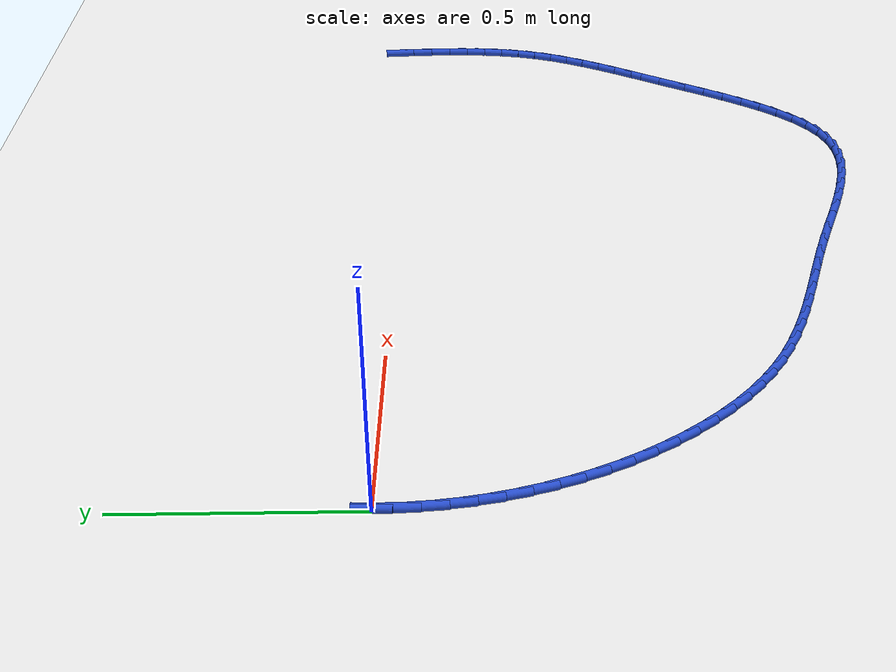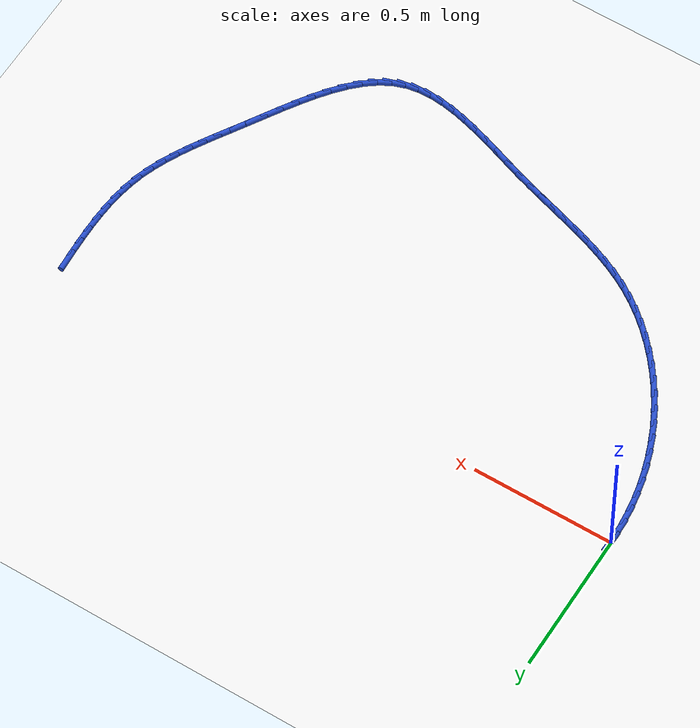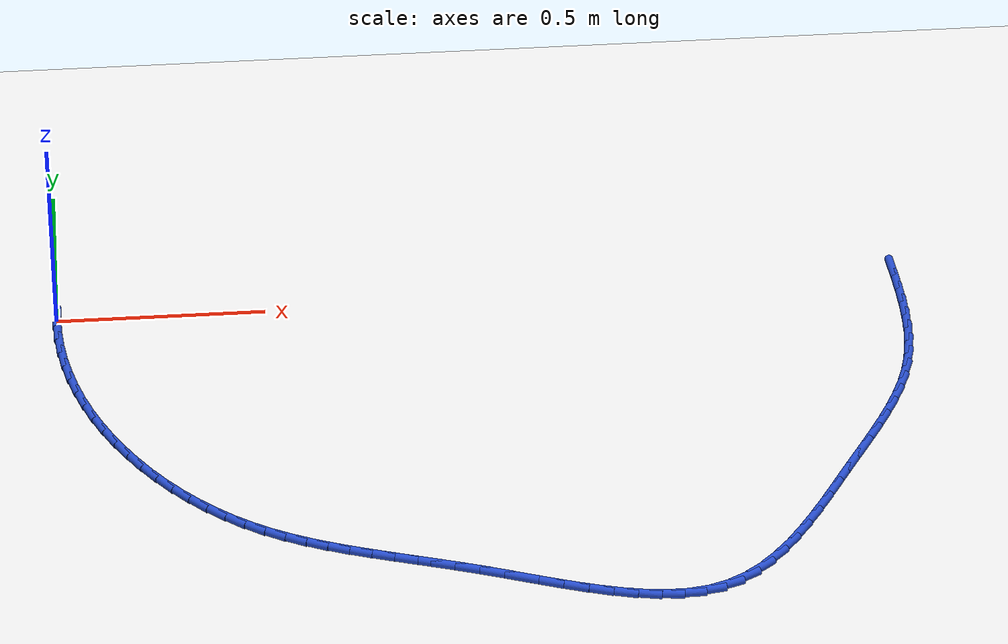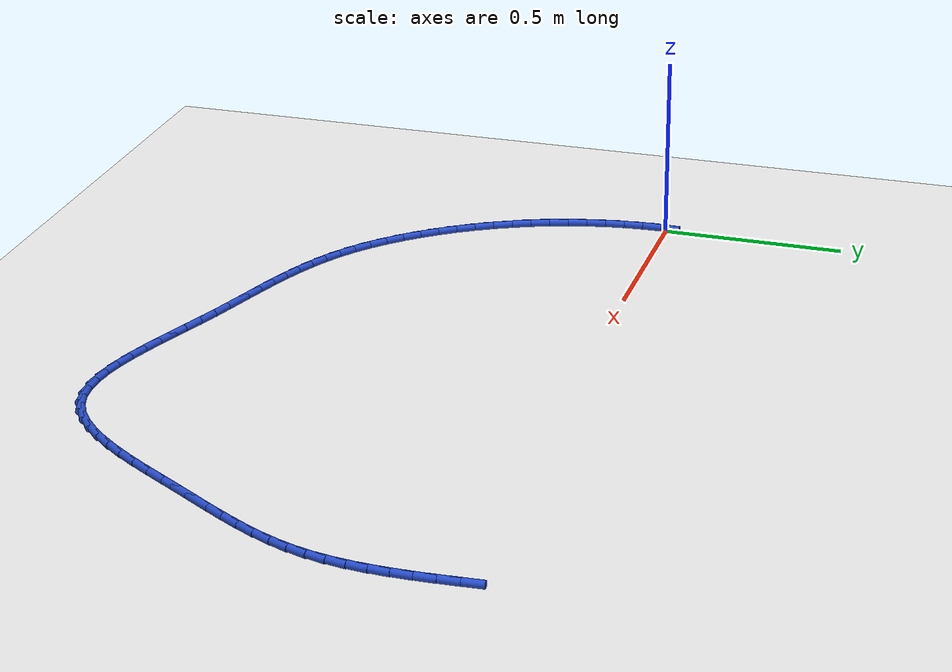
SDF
<sdf version="1.6">
 <world name="default">
  <model name="ground_plane">
   <static>1</static>
   <link name="link">
    <collision name="collision">
     <geometry><plane><normal>0 0 1</normal><size>100 100</size></plane></geometry>
     <surface><friction><ode><mu>100</mu><mu2>50</mu2></ode></friction></surface>
    </collision>
    <visual name="visual">
     <cast_shadows>0</cast_shadows>
     <geometry><plane><normal>0 0 1</normal><size>100 100</size></plane></geometry>
     <material>
      <script><uri>file://media/materials/scripts/gazebo.material</uri><name>Gazebo/WhiteGlow</name></script>
     </material>
    </visual>
   </link>
  </model>
  <model name="line">
   <link name="link_0">
    <pose>-3.8163916471489756e-17 -1.3877787807814457e-17 0.01 0 1.57 1.5338196663355226</pose>
    <collision name="collision">
     <geometry><cylinder><radius>0.01</radius><length>0.08</length></cylinder></geometry>
    </collision>
    <visual name="visual">
     <material>
      <script><name>Gazebo/Blue</name><uri>file://media/materials/scripts/gazebo.material</uri></script>
     </material>
     <geometry><cylinder><radius>0.01</radius><length>0.08</length></cylinder></geometry>
    </visual>
   </link>
   <link name="link_66">
    <pose>2.02982576677771 0.03937283948993935 0.01 0 1.57 -1.5128037983001843</pose>
    <collision name="collision">
     <geometry><cylinder><radius>0.01</radius><length>0.08</length></cylinder></geometry>
    </collision>
    <visual name="visual">
     <material>
      <script><name>Gazebo/Blue</name><uri>file://media/materials/scripts/gazebo.material</uri></script>
     </material>
     <geometry><cylinder><radius>0.01</radius><length>0.08</length></cylinder></geometry>
    </visual>
   </link>
   <link name="link_67">
    <pose>2.0329396862041307 -0.014262135258114941 0.01 0 1.57 -1.5294490253992066</pose>
    <collision name="collision">
     <geometry><cylinder><radius>0.01</radius><length>0.08</length></cylinder></geometry>
    </collision>
    <visual name="visual">
     <material>
      <script><name>Gazebo/Blue</name><uri>file://media/materials/scripts/gazebo.material</uri></script>
     </material>
     <geometry><cylinder><radius>0.01</radius><length>0.08</length></cylinder></geometry>
    </visual>
   </link>
   <link name="link_68">
    <pose>2.0351315441236397 -0.06724282896489095 0.01 0 1.57 -1.5552889942395118</pose>
    <collision name="collision">
     <geometry><cylinder><radius>0.01</radius><length>0.08</length></cylinder></geometry>
    </collision>
    <visual name="visual">
     <material>
      <script><name>Gazebo/Blue</name><uri>file://media/materials/scripts/gazebo.material</uri></script>
     </material>
     <geometry><cylinder><radius>0.01</radius><length>0.08</length></cylinder></geometry>
    </visual>
   </link>
   <link name="link_69">
    <pose>2.0359423396602296 -0.11952329306114184 0.01 0 1.57 1.5508264974194306</pose>
    <collision name="collision">
     <geometry><cylinder><radius>0.01</radius><length>0.08</length></cylinder></geometry>
    </collision>
    <visual name="visual">
     <material>
      <script><name>Gazebo/Blue</name><uri>file://media/materials/scripts/gazebo.material</uri></script>
     </material>
     <geometry><cylinder><radius>0.01</radius><length>0.08</length></cylinder></geometry>
    </visual>
   </link>
   <link name="link_70">
    <pose>2.0349130719378934 -0.17105757897762092 0.01 0 1.57 1.5052971270304842</pose>
    <collision name="collision">
     <geometry><cylinder><radius>0.01</radius><length>0.08</length></cylinder></geometry>
    </collision>
    <visual name="visual">
     <material>
      <script><name>Gazebo/Blue</name><uri>file://media/materials/scripts/gazebo.material</uri></script>
     </material>
     <geometry><cylinder><radius>0.01</radius><length>0.08</length></cylinder></geometry>
    </visual>
   </link>
   <link name="link_71">
    <pose>2.031584740080623 -0.2217997381450791 0.01 0 1.57 1.4494338025752762</pose>
    <collision name="collision">
     <geometry><cylinder><radius>0.01</radius><length>0.08</length></cylinder></geometry>
    </collision>
    <visual name="visual">
     <material>
      <script><name>Gazebo/Blue</name><uri>file://media/materials/scripts/gazebo.material</uri></script>
     </material>
     <geometry><cylinder><radius>0.01</radius><length>0.08</length></cylinder></geometry>
    </visual>
   </link>
   <link name="link_72">
    <pose>2.0254983432124103 -0.2717038219942697 0.01 0 1.57 1.3832381428806741</pose>
    <collision name="collision">
     <geometry><cylinder><radius>0.01</radius><length>0.08</length></cylinder></geometry>
    </collision>
    <visual name="visual">
     <material>
      <script><name>Gazebo/Blue</name><uri>file://media/materials/scripts/gazebo.material</uri></script>
     </material>
     <geometry><cylinder><radius>0.01</radius><length>0.08</length></cylinder></geometry>
    </visual>
   </link>
   <link name="link_73">
    <pose>2.0161948804572476 -0.32072388195594503 0.01 0 1.57 1.3072759625252932</pose>
    <collision name="collision">
     <geometry><cylinder><radius>0.01</radius><length>0.08</length></cylinder></geometry>
    </collision>
    <visual name="visual">
     <material>
      <script><name>Gazebo/Blue</name><uri>file://media/materials/scripts/gazebo.material</uri></script>
     </material>
     <geometry><cylinder><radius>0.01</radius><length>0.08</length></cylinder></geometry>
    </visual>
   </link>
   <link name="link_74">
    <pose>2.0032199969804063 -0.368815594431292 0.01 0 1.57 1.2297652328838666</pose>
    <collision name="collision">
     <geometry><cylinder><radius>0.01</radius><length>0.08</length></cylinder></geometry>
    </collision>
    <visual name="visual">
     <material>
      <script><name>Gazebo/Blue</name><uri>file://media/materials/scripts/gazebo.material</uri></script>
     </material>
     <geometry><cylinder><radius>0.01</radius><length>0.08</length></cylinder></geometry>
    </visual>
   </link>
   <link name="link_75">
    <pose>1.9864558062359925 -0.4160523168726682 0.01 0 1.57 1.1637201515760263</pose>
    <collision name="collision">
     <geometry><cylinder><radius>0.01</radius><length>0.08</length></cylinder></geometry>
    </collision>
    <visual name="visual">
     <material>
      <script><name>Gazebo/Blue</name><uri>file://media/materials/scripts/gazebo.material</uri></script>
     </material>
     <geometry><cylinder><radius>0.01</radius><length>0.08</length></cylinder></geometry>
    </visual>
   </link>
   <link name="link_76">
    <pose>1.9663421496555027 -0.46270247419294047 0.01 0 1.57 1.1106824361232561</pose>
    <collision name="collision">
     <geometry><cylinder><radius>0.01</radius><length>0.08</length></cylinder></geometry>
    </collision>
    <visual name="visual">
     <material>
      <script><name>Gazebo/Blue</name><uri>file://media/materials/scripts/gazebo.material</uri></script>
     </material>
     <geometry><cylinder><radius>0.01</radius><length>0.08</length></cylinder></geometry>
    </visual>
   </link>
   <link name="link_77">
    <pose>1.9433713410738633 -0.5090528437256904 0.01 0 1.57 1.0704401832279822</pose>
    <collision name="collision">
     <geometry><cylinder><radius>0.01</radius><length>0.08</length></cylinder></geometry>
    </collision>
    <visual name="visual">
     <material>
      <script><name>Gazebo/Blue</name><uri>file://media/materials/scripts/gazebo.material</uri></script>
     </material>
     <geometry><cylinder><radius>0.01</radius><length>0.08</length></cylinder></geometry>
    </visual>
   </link>
   <link name="link_78">
    <pose>1.9180356943259989 -0.5553902028044991 0.01 0 1.57 1.0424282347799576</pose>
    <collision name="collision">
     <geometry><cylinder><radius>0.01</radius><length>0.08</length></cylinder></geometry>
    </collision>
    <visual name="visual">
     <material>
      <script><name>Gazebo/Blue</name><uri>file://media/materials/scripts/gazebo.material</uri></script>
     </material>
     <geometry><cylinder><radius>0.01</radius><length>0.08</length></cylinder></geometry>
    </visual>
   </link>
   <link name="link_79">
    <pose>1.8908275232468366 -0.6020013287629461 0.01 0 1.57 1.0259403098502249</pose>
    <collision name="collision">
     <geometry><cylinder><radius>0.01</radius><length>0.08</length></cylinder></geometry>
    </collision>
    <visual name="visual">
     <material>
      <script><name>Gazebo/Blue</name><uri>file://media/materials/scripts/gazebo.material</uri></script>
     </material>
     <geometry><cylinder><radius>0.01</radius><length>0.08</length></cylinder></geometry>
    </visual>
   </link>
   <link name="link_80">
    <pose>1.8622391416713016 -0.6491729989346129 0.01 0 1.57 1.0202579169305597</pose>
    <collision name="collision">
     <geometry><cylinder><radius>0.01</radius><length>0.08</length></cylinder></geometry>
    </collision>
    <visual name="visual">
     <material>
      <script><name>Gazebo/Blue</name><uri>file://media/materials/scripts/gazebo.material</uri></script>
     </material>
     <geometry><cylinder><radius>0.01</radius><length>0.08</length></cylinder></geometry>
    </visual>
   </link>
   <link name="link_81">
    <pose>1.8327628634343196 -0.6971919906530796 0.01 0 1.57 1.0243598527778592</pose>
    <collision name="collision">
     <geometry><cylinder><radius>0.01</radius><length>0.08</length></cylinder></geometry>
    </collision>
    <visual name="visual">
     <material>
      <script><name>Gazebo/Blue</name><uri>file://media/materials/scripts/gazebo.material</uri></script>
     </material>
     <geometry><cylinder><radius>0.01</radius><length>0.08</length></cylinder></geometry>
    </visual>
   </link>
   <link name="link_82">
    <pose>1.8028791767765624 -0.7463255916297643 0.01 0 1.57 1.0277926417521654</pose>
    <collision name="collision">
     <geometry><cylinder><radius>0.01</radius><length>0.08</length></cylinder></geometry>
    </collision>
    <visual name="visual">
     <material>
      <script><name>Gazebo/Blue</name><uri>file://media/materials/scripts/gazebo.material</uri></script>
     </material>
     <geometry><cylinder><radius>0.01</radius><length>0.08</length></cylinder></geometry>
    </visual>
   </link>
   <link name="link_83">
    <pose>1.7727294112344658 -0.7962821261230306 0.01 0 1.57 1.019532663882769</pose>
    <collision name="collision">
     <geometry><cylinder><radius>0.01</radius><length>0.08</length></cylinder></geometry>
    </collision>
    <visual name="visual">
     <material>
      <script><name>Gazebo/Blue</name><uri>file://media/materials/scripts/gazebo.material</uri></script>
     </material>
     <geometry><cylinder><radius>0.01</radius><length>0.08</length></cylinder></geometry>
    </visual>
   </link>
   <link name="link_84">
    <pose>1.7420736038232008 -0.8461415146921801 0.01 0 1.57 0.9988058442308922</pose>
    <collision name="collision">
     <geometry><cylinder><radius>0.01</radius><length>0.08</length></cylinder></geometry>
    </collision>
    <visual name="visual">
     <material>
      <script><name>Gazebo/Blue</name><uri>file://media/materials/scripts/gazebo.material</uri></script>
     </material>
     <geometry><cylinder><radius>0.01</radius><length>0.08</length></cylinder></geometry>
    </visual>
   </link>
   <link name="link_85">
    <pose>1.7106515029616298 -0.8949502405006625 0.01 0 1.57 0.9645948251555788</pose>
    <collision name="collision">
     <geometry><cylinder><radius>0.01</radius><length>0.08</length></cylinder></geometry>
    </collision>
    <visual name="visual">
     <material>
      <script><name>Gazebo/Blue</name><uri>file://media/materials/scripts/gazebo.material</uri></script>
     </material>
     <geometry><cylinder><radius>0.01</radius><length>0.08</length></cylinder></geometry>
    </visual>
   </link>
   <link name="link_86">
    <pose>1.678202857068613 -0.941754786711926 0.01 0 1.57 0.9149990270780585</pose>
    <collision name="collision">
     <geometry><cylinder><radius>0.01</radius><length>0.08</length></cylinder></geometry>
    </collision>
    <visual name="visual">
     <material>
      <script><name>Gazebo/Blue</name><uri>file://media/materials/scripts/gazebo.material</uri></script>
     </material>
     <geometry><cylinder><radius>0.01</radius><length>0.08</length></cylinder></geometry>
    </visual>
   </link>
   <link name="link_87">
    <pose>1.6444674145630118 -0.985601636489418 0.01 0 1.57 0.8471814575128421</pose>
    <collision name="collision">
     <geometry><cylinder><radius>0.01</radius><length>0.08</length></cylinder></geometry>
    </collision>
    <visual name="visual">
     <material>
      <script><name>Gazebo/Blue</name><uri>file://media/materials/scripts/gazebo.material</uri></script>
     </material>
     <geometry><cylinder><radius>0.01</radius><length>0.08</length></cylinder></geometry>
    </visual>
   </link>
   <link name="link_88">
    <pose>1.6091849238636882 -1.0255372729965877 0.01 0 1.57 0.757427846449523</pose>
    <collision name="collision">
     <geometry><cylinder><radius>0.01</radius><length>0.08</length></cylinder></geometry>
    </collision>
    <visual name="visual">
     <material>
      <script><name>Gazebo/Blue</name><uri>file://media/materials/scripts/gazebo.material</uri></script>
     </material>
     <geometry><cylinder><radius>0.01</radius><length>0.08</length></cylinder></geometry>
    </visual>
   </link>
   <link name="link_89">
    <pose>1.5720951333895026 -1.0606081793968827 0.01 0 1.57 0.6416131750559465</pose>
    <collision name="collision">
     <geometry><cylinder><radius>0.01</radius><length>0.08</length></cylinder></geometry>
    </collision>
    <visual name="visual">
     <material>
      <script><name>Gazebo/Blue</name><uri>file://media/materials/scripts/gazebo.material</uri></script>
     </material>
     <geometry><cylinder><radius>0.01</radius><length>0.08</length></cylinder></geometry>
    </visual>
   </link>
   <link name="link_90">
    <pose>1.5329377915593163 -1.0898608388537516 0.01 0 1.57 0.49660492217334423</pose>
    <collision name="collision">
     <geometry><cylinder><radius>0.01</radius><length>0.08</length></cylinder></geometry>
    </collision>
    <visual name="visual">
     <material>
      <script><name>Gazebo/Blue</name><uri>file://media/materials/scripts/gazebo.material</uri></script>
     </material>
     <geometry><cylinder><radius>0.01</radius><length>0.08</length></cylinder></geometry>
    </visual>
   </link>
   <link name="link_91">
    <pose>1.4914526467919913 -1.1123417345306439 0.01 0 1.57 0.3242126859132285</pose>
    <collision name="collision">
     <geometry><cylinder><radius>0.01</radius><length>0.08</length></cylinder></geometry>
    </collision>
    <visual name="visual">
     <material>
      <script><name>Gazebo/Blue</name><uri>file://media/materials/scripts/gazebo.material</uri></script>
     </material>
     <geometry><cylinder><radius>0.01</radius><length>0.08</length></cylinder></geometry>
    </visual>
   </link>
   <link name="link_92">
    <pose>1.4473952346830166 -1.1271481657472615 0.01 0 1.57 0.15319109008973023</pose>
    <collision name="collision">
     <geometry><cylinder><radius>0.01</radius><length>0.08</length></cylinder></geometry>
    </collision>
    <visual name="visual">
     <material>
      <script><name>Gazebo/Blue</name><uri>file://media/materials/scripts/gazebo.material</uri></script>
     </material>
     <geometry><cylinder><radius>0.01</radius><length>0.08</length></cylinder></geometry>
    </visual>
   </link>
   <link name="link_93">
    <pose>1.400819955660731 -1.1343394253705312 0.01 0 1.57 0.010145755387892995</pose>
    <collision name="collision">
     <geometry><cylinder><radius>0.01</radius><length>0.08</length></cylinder></geometry>
    </collision>
    <visual name="visual">
     <material>
      <script><name>Gazebo/Blue</name><uri>file://media/materials/scripts/gazebo.material</uri></script>
     </material>
     <geometry><cylinder><radius>0.01</radius><length>0.08</length></cylinder></geometry>
    </visual>
   </link>
   <link name="link_94">
    <pose>1.352048221318131 -1.1348342684362445 0.01 0 1.57 -0.103359835719194</pose>
    <collision name="collision">
     <geometry><cylinder><radius>0.01</radius><length>0.08</length></cylinder></geometry>
    </collision>
    <visual name="visual">
     <material>
      <script><name>Gazebo/Blue</name><uri>file://media/materials/scripts/gazebo.material</uri></script>
     </material>
     <geometry><cylinder><radius>0.01</radius><length>0.08</length></cylinder></geometry>
    </visual>
   </link>
   <link name="link_95">
    <pose>1.3014108343143909 -1.129581678177253 0.01 0 1.57 -0.19031945520904656</pose>
    <collision name="collision">
     <geometry><cylinder><radius>0.01</radius><length>0.08</length></cylinder></geometry>
    </collision>
    <visual name="visual">
     <material>
      <script><name>Gazebo/Blue</name><uri>file://media/materials/scripts/gazebo.material</uri></script>
     </material>
     <geometry><cylinder><radius>0.01</radius><length>0.08</length></cylinder></geometry>
    </visual>
   </link>
   <link name="link_96">
    <pose>1.2492385973086821 -1.11953063782641 0.01 0 1.57 -0.254765902252908</pose>
    <collision name="collision">
     <geometry><cylinder><radius>0.01</radius><length>0.08</length></cylinder></geometry>
    </collision>
    <visual name="visual">
     <material>
      <script><name>Gazebo/Blue</name><uri>file://media/materials/scripts/gazebo.material</uri></script>
     </material>
     <geometry><cylinder><radius>0.01</radius><length>0.08</length></cylinder></geometry>
    </visual>
   </link>
   <link name="link_97">
    <pose>1.1958623129601778 -1.1056301306165683 0.01 0 1.57 -0.30033046386930723</pose>
    <collision name="collision">
     <geometry><cylinder><radius>0.01</radius><length>0.08</length></cylinder></geometry>
    </collision>
    <visual name="visual">
     <material>
      <script><name>Gazebo/Blue</name><uri>file://media/materials/scripts/gazebo.material</uri></script>
     </material>
     <geometry><cylinder><radius>0.01</radius><length>0.08</length></cylinder></geometry>
    </visual>
   </link>
   <link name="link_98">
    <pose>1.1416127839280497 -1.08882913978058 0.01 0 1.57 -0.3297529795416095</pose>
    <collision name="collision">
     <geometry><cylinder><radius>0.01</radius><length>0.08</length></cylinder></geometry>
    </collision>
    <visual name="visual">
     <material>
      <script><name>Gazebo/Blue</name><uri>file://media/materials/scripts/gazebo.material</uri></script>
     </material>
     <geometry><cylinder><radius>0.01</radius><length>0.08</length></cylinder></geometry>
    </visual>
   </link>
   <link name="link_99">
    <pose>1.0868208128714703 -1.0700766485512976 0.01 0 1.57 -0.344810333130079</pose>
    <collision name="collision">
     <geometry><cylinder><radius>0.01</radius><length>0.08</length></cylinder></geometry>
    </collision>
    <visual name="visual">
     <material>
      <script><name>Gazebo/Blue</name><uri>file://media/materials/scripts/gazebo.material</uri></script>
     </material>
     <geometry><cylinder><radius>0.01</radius><length>0.08</length></cylinder></geometry>
    </visual>
   </link>
   <link name="link_100">
    <pose>1.0318172024496135 -1.050321640161574 0.01 0 1.57 -0.3463641094533469</pose>
    <collision name="collision">
     <geometry><cylinder><radius>0.01</radius><length>0.08</length></cylinder></geometry>
    </collision>
    <visual name="visual">
     <material>
      <script><name>Gazebo/Blue</name><uri>file://media/materials/scripts/gazebo.material</uri></script>
     </material>
     <geometry><cylinder><radius>0.01</radius><length>0.08</length></cylinder></geometry>
    </visual>
   </link>
   <link name="link_101">
    <pose>0.9769327553216509 -1.030513097844262 0.01 0 1.57 -0.33446970094752554</pose>
    <collision name="collision">
     <geometry><cylinder><radius>0.01</radius><length>0.08</length></cylinder></geometry>
    </collision>
    <visual name="visual">
     <material>
      <script><name>Gazebo/Blue</name><uri>file://media/materials/scripts/gazebo.material</uri></script>
     </material>
     <geometry><cylinder><radius>0.01</radius><length>0.08</length></cylinder></geometry>
    </visual>
   </link>
   <link name="link_102">
    <pose>0.922497445137687 -1.0115953763401122 0.01 0 1.57 -0.3156953309619636</pose>
    <collision name="collision">
     <geometry><cylinder><radius>0.01</radius><length>0.08</length></cylinder></geometry>
    </collision>
    <visual name="visual">
     <material>
      <script><name>Gazebo/Blue</name><uri>file://media/materials/scripts/gazebo.material</uri></script>
     </material>
     <geometry><cylinder><radius>0.01</radius><length>0.08</length></cylinder></geometry>
    </visual>
   </link>
   <link name="link_103">
    <pose>0.8687570502217405 -0.994042754226601 0.01 0 1.57 -0.3034510625504085</pose>
    <collision name="collision">
     <geometry><cylinder><radius>0.01</radius><length>0.08</length></cylinder></geometry>
    </collision>
    <visual name="visual">
     <material>
      <script><name>Gazebo/Blue</name><uri>file://media/materials/scripts/gazebo.material</uri></script>
     </material>
     <geometry><cylinder><radius>0.01</radius><length>0.08</length></cylinder></geometry>
    </visual>
   </link>
   <link name="link_104">
    <pose>0.8158018505451927 -0.9774613375543151 0.01 0 1.57 -0.2996939550771678</pose>
    <collision name="collision">
     <geometry><cylinder><radius>0.01</radius><length>0.08</length></cylinder></geometry>
    </collision>
    <visual name="visual">
     <material>
      <script><name>Gazebo/Blue</name><uri>file://media/materials/scripts/gazebo.material</uri></script>
     </material>
     <geometry><cylinder><radius>0.01</radius><length>0.08</length></cylinder></geometry>
    </visual>
   </link>
   <link name="link_105">
    <pose>0.7637053311391283 -0.9613634634977674 0.01 0 1.57 -0.3048980543344279</pose>
    <collision name="collision">
     <geometry><cylinder><radius>0.01</radius><length>0.08</length></cylinder></geometry>
    </collision>
    <visual name="visual">
     <material>
      <script><name>Gazebo/Blue</name><uri>file://media/materials/scripts/gazebo.material</uri></script>
     </material>
     <geometry><cylinder><radius>0.01</radius><length>0.08</length></cylinder></geometry>
    </visual>
   </link>
   <link name="link_106">
    <pose>0.7125409770346307 -0.945261469231471 0.01 0 1.57 -0.3194917917399592</pose>
    <collision name="collision">
     <geometry><cylinder><radius>0.01</radius><length>0.08</length></cylinder></geometry>
    </collision>
    <visual name="visual">
     <material>
      <script><name>Gazebo/Blue</name><uri>file://media/materials/scripts/gazebo.material</uri></script>
     </material>
     <geometry><cylinder><radius>0.01</radius><length>0.08</length></cylinder></geometry>
    </visual>
   </link>
   <link name="link_107">
    <pose>0.6623822732627839 -0.9286676919299386 0.01 0 1.57 -0.3438333574824525</pose>
    <collision name="collision">
     <geometry><cylinder><radius>0.01</radius><length>0.08</length></cylinder></geometry>
    </collision>
    <visual name="visual">
     <material>
      <script><name>Gazebo/Blue</name><uri>file://media/materials/scripts/gazebo.material</uri></script>
     </material>
     <geometry><cylinder><radius>0.01</radius><length>0.08</length></cylinder></geometry>
    </visual>
   </link>
   <link name="link_108">
    <pose>0.6133027048546725 -0.9110944687676834 0.01 0 1.57 -0.3781578016418796</pose>
    <collision name="collision">
     <geometry><cylinder><radius>0.01</radius><length>0.08</length></cylinder></geometry>
    </collision>
    <visual name="visual">
     <material>
      <script><name>Gazebo/Blue</name><uri>file://media/materials/scripts/gazebo.material</uri></script>
     </material>
     <geometry><cylinder><radius>0.01</radius><length>0.08</length></cylinder></geometry>
    </visual>
   </link>
   <link name="link_109">
    <pose>0.5653757568413805 -0.8920541369192184 0.01 0 1.57 -0.42249281669900474</pose>
    <collision name="collision">
     <geometry><cylinder><radius>0.01</radius><length>0.08</length></cylinder></geometry>
    </collision>
    <visual name="visual">
     <material>
      <script><name>Gazebo/Blue</name><uri>file://media/materials/scripts/gazebo.material</uri></script>
     </material>
     <geometry><cylinder><radius>0.01</radius><length>0.08</length></cylinder></geometry>
    </visual>
   </link>
   <link name="link_110">
    <pose>0.5186749142539911 -0.871059033559056 0.01 0 1.57 -0.4765480025944898</pose>
    <collision name="collision">
     <geometry><cylinder><radius>0.01</radius><length>0.08</length></cylinder></geometry>
    </collision>
    <visual name="visual">
     <material>
      <script><name>Gazebo/Blue</name><uri>file://media/materials/scripts/gazebo.material</uri></script>
     </material>
     <geometry><cylinder><radius>0.01</radius><length>0.08</length></cylinder></geometry>
    </visual>
   </link>
   <link name="link_111">
    <pose>0.47327366212358946 -0.8476214958617094 0.01 0 1.57 -0.5395957707182615</pose>
    <collision name="collision">
     <geometry><cylinder><radius>0.01</radius><length>0.08</length></cylinder></geometry>
    </collision>
    <visual name="visual">
     <material>
      <script><name>Gazebo/Blue</name><uri>file://media/materials/scripts/gazebo.material</uri></script>
     </material>
     <geometry><cylinder><radius>0.01</radius><length>0.08</length></cylinder></geometry>
    </visual>
   </link>
   <link name="link_112">
    <pose>0.42924548768161525 -0.8212538903816127 0.01 0 1.57 -0.6081764511558502</pose>
    <collision name="collision">
     <geometry><cylinder><radius>0.01</radius><length>0.08</length></cylinder></geometry>
    </collision>
    <visual name="visual">
     <material>
      <script><name>Gazebo/Blue</name><uri>file://media/materials/scripts/gazebo.material</uri></script>
     </material>
     <geometry><cylinder><radius>0.01</radius><length>0.08</length></cylinder></geometry>
    </visual>
   </link>
   <link name="link_113">
    <pose>0.38667491234197837 -0.7916159159244712 0.01 0 1.57 -0.6742290009828796</pose>
    <collision name="collision">
     <geometry><cylinder><radius>0.01</radius><length>0.08</length></cylinder></geometry>
    </collision>
    <visual name="visual">
     <material>
      <script><name>Gazebo/Blue</name><uri>file://media/materials/scripts/gazebo.material</uri></script>
     </material>
     <geometry><cylinder><radius>0.01</radius><length>0.08</length></cylinder></geometry>
    </visual>
   </link>
   <link name="link_114">
    <pose>0.3456831265698659 -0.7588568892528582 0.01 0 1.57 -0.7366469549151596</pose>
    <collision name="collision">
     <geometry><cylinder><radius>0.01</radius><length>0.08</length></cylinder></geometry>
    </collision>
    <visual name="visual">
     <material>
      <script><name>Gazebo/Blue</name><uri>file://media/materials/scripts/gazebo.material</uri></script>
     </material>
     <geometry><cylinder><radius>0.01</radius><length>0.08</length></cylinder></geometry>
    </visual>
   </link>
   <link name="link_115">
    <pose>0.30639892832071597 -0.723227704991441 0.01 0 1.57 -0.7959747044545866</pose>
    <collision name="collision">
     <geometry><cylinder><radius>0.01</radius><length>0.08</length></cylinder></geometry>
    </collision>
    <visual name="visual">
     <material>
      <script><name>Gazebo/Blue</name><uri>file://media/materials/scripts/gazebo.material</uri></script>
     </material>
     <geometry><cylinder><radius>0.01</radius><length>0.08</length></cylinder></geometry>
    </visual>
   </link>
   <link name="link_116">
    <pose>0.2689511155499683 -0.6849792577648878 0.01 0 1.57 -0.852762880248388</pose>
    <collision name="collision">
     <geometry><cylinder><radius>0.01</radius><length>0.08</length></cylinder></geometry>
    </collision>
    <visual name="visual">
     <material>
      <script><name>Gazebo/Blue</name><uri>file://media/materials/scripts/gazebo.material</uri></script>
     </material>
     <geometry><cylinder><radius>0.01</radius><length>0.08</length></cylinder></geometry>
    </visual>
   </link>
   <link name="link_117">
    <pose>0.23346848621306082 -0.6443624421978653 0.01 0 1.57 -0.9075572330227254</pose>
    <collision name="collision">
     <geometry><cylinder><radius>0.01</radius><length>0.08</length></cylinder></geometry>
    </collision>
    <visual name="visual">
     <material>
      <script><name>Gazebo/Blue</name><uri>file://media/materials/scripts/gazebo.material</uri></script>
     </material>
     <geometry><cylinder><radius>0.01</radius><length>0.08</length></cylinder></geometry>
    </visual>
   </link>
   <link name="link_118">
    <pose>0.20007983826543155 -0.6016281529150406 0.01 0 1.57 -0.9608945379318184</pose>
    <collision name="collision">
     <geometry><cylinder><radius>0.01</radius><length>0.08</length></cylinder></geometry>
    </collision>
    <visual name="visual">
     <material>
      <script><name>Gazebo/Blue</name><uri>file://media/materials/scripts/gazebo.material</uri></script>
     </material>
     <geometry><cylinder><radius>0.01</radius><length>0.08</length></cylinder></geometry>
    </visual>
   </link>
   <link name="link_119">
    <pose>0.16891396966252 -0.5570272845410822 0.01 0 1.57 -1.0133033354226777</pose>
    <collision name="collision">
     <geometry><cylinder><radius>0.01</radius><length>0.08</length></cylinder></geometry>
    </collision>
    <visual name="visual">
     <material>
      <script><name>Gazebo/Blue</name><uri>file://media/materials/scripts/gazebo.material</uri></script>
     </material>
     <geometry><cylinder><radius>0.01</radius><length>0.08</length></cylinder></geometry>
    </visual>
   </link>
   <link name="link_120">
    <pose>0.1400996783597642 -0.5108107317006566 0.01 0 1.57 -1.0653078689100282</pose>
    <collision name="collision">
     <geometry><cylinder><radius>0.01</radius><length>0.08</length></cylinder></geometry>
    </collision>
    <visual name="visual">
     <material>
      <script><name>Gazebo/Blue</name><uri>file://media/materials/scripts/gazebo.material</uri></script>
     </material>
     <geometry><cylinder><radius>0.01</radius><length>0.08</length></cylinder></geometry>
    </visual>
   </link>
   <link name="link_121">
    <pose>0.1137657619225691 -0.46322938841167943 0.01 0 1.57 -1.117376501010431</pose>
    <collision name="collision">
     <geometry><cylinder><radius>0.01</radius><length>0.08</length></cylinder></geometry>
    </collision>
    <visual name="visual">
     <material>
      <script><name>Gazebo/Blue</name><uri>file://media/materials/scripts/gazebo.material</uri></script>
     </material>
     <geometry><cylinder><radius>0.01</radius><length>0.08</length></cylinder></geometry>
    </visual>
   </link>
   <link name="link_122">
    <pose>0.09002669199693514 -0.4145118626991317 0.01 0 1.57 -1.1696624191909595</pose>
    <collision name="collision">
     <geometry><cylinder><radius>0.01</radius><length>0.08</length></cylinder></geometry>
    </collision>
    <visual name="visual">
     <material>
      <script><name>Gazebo/Blue</name><uri>file://media/materials/scripts/gazebo.material</uri></script>
     </material>
     <geometry><cylinder><radius>0.01</radius><length>0.08</length></cylinder></geometry>
    </visual>
   </link>
   <link name="link_123">
    <pose>0.06894472260630134 -0.3648055306939333 0.01 0 1.57 -1.2222563170675607</pose>
    <collision name="collision">
     <geometry><cylinder><radius>0.01</radius><length>0.08</length></cylinder></geometry>
    </collision>
    <visual name="visual">
     <material>
      <script><name>Gazebo/Blue</name><uri>file://media/materials/scripts/gazebo.material</uri></script>
     </material>
     <geometry><cylinder><radius>0.01</radius><length>0.08</length></cylinder></geometry>
    </visual>
   </link>
   <link name="link_124">
    <pose>0.05057021384766976 -0.3142392658429505 0.01 0 1.57 -1.2752759376111817</pose>
    <collision name="collision">
     <geometry><cylinder><radius>0.01</radius><length>0.08</length></cylinder></geometry>
    </collision>
    <visual name="visual">
     <material>
      <script><name>Gazebo/Blue</name><uri>file://media/materials/scripts/gazebo.material</uri></script>
     </material>
     <geometry><cylinder><radius>0.01</radius><length>0.08</length></cylinder></geometry>
    </visual>
   </link>
   <link name="link_125">
    <pose>0.034953525818041474 -0.2629419415930475 0.01 0 1.57 -1.3288369903224222</pose>
    <collision name="collision">
     <geometry><cylinder><radius>0.01</radius><length>0.08</length></cylinder></geometry>
    </collision>
    <visual name="visual">
     <material>
      <script><name>Gazebo/Blue</name><uri>file://media/materials/scripts/gazebo.material</uri></script>
     </material>
     <geometry><cylinder><radius>0.01</radius><length>0.08</length></cylinder></geometry>
    </visual>
   </link>
   <link name="link_126">
    <pose>0.022145018614417786 -0.21104243139108841 0.01 0 1.57 -1.3830504138339903</pose>
    <collision name="collision">
     <geometry><cylinder><radius>0.01</radius><length>0.08</length></cylinder></geometry>
    </collision>
    <visual name="visual">
     <material>
      <script><name>Gazebo/Blue</name><uri>file://media/materials/scripts/gazebo.material</uri></script>
     </material>
     <geometry><cylinder><radius>0.01</radius><length>0.08</length></cylinder></geometry>
    </visual>
   </link>
   <link name="link_127">
    <pose>0.012195052333800473 -0.15866960868393962 0.01 0 1.57 -1.4380193395794612</pose>
    <collision name="collision">
     <geometry><cylinder><radius>0.01</radius><length>0.08</length></cylinder></geometry>
    </collision>
    <visual name="visual">
     <material>
      <script><name>Gazebo/Blue</name><uri>file://media/materials/scripts/gazebo.material</uri></script>
     </material>
     <geometry><cylinder><radius>0.01</radius><length>0.08</length></cylinder></geometry>
    </visual>
   </link>
   <link name="link_128">
    <pose>0.005153987073190774 -0.10595234691846542 0.01 0 1.57 -1.4938357257982195</pose>
    <collision name="collision">
     <geometry><cylinder><radius>0.01</radius><length>0.08</length></cylinder></geometry>
    </collision>
    <visual name="visual">
     <material>
      <script><name>Gazebo/Blue</name><uri>file://media/materials/scripts/gazebo.material</uri></script>
     </material>
     <geometry><cylinder><radius>0.01</radius><length>0.08</length></cylinder></geometry>
    </visual>
   </link>
   <link name="link_129">
    <pose>0.0010721829295901146 -0.05301951954153051 0.01 0 1.57 -1.5505766639300032</pose>
    <collision name="collision">
     <geometry><cylinder><radius>0.01</radius><length>0.08</length></cylinder></geometry>
    </collision>
    <visual name="visual">
     <material>
      <script><name>Gazebo/Blue</name><uri>file://media/materials/scripts/gazebo.material</uri></script>
     </material>
     <geometry><cylinder><radius>0.01</radius><length>0.08</length></cylinder></geometry>
    </visual>
   </link>
   <link name="link_130">
    <pose>-5.724587470723463e-17 4.163336342344337e-17 0.01 0 1.57 1.5332922472003985</pose>
    <collision name="collision">
     <geometry><cylinder><radius>0.01</radius><length>0.08</length></cylinder></geometry>
    </collision>
    <visual name="visual">
     <material>
      <script><name>Gazebo/Blue</name><uri>file://media/materials/scripts/gazebo.material</uri></script>
     </material>
     <geometry><cylinder><radius>0.01</radius><length>0.08</length></cylinder></geometry>
    </visual>
   </link>
  </model>
 </world>
</sdf>
